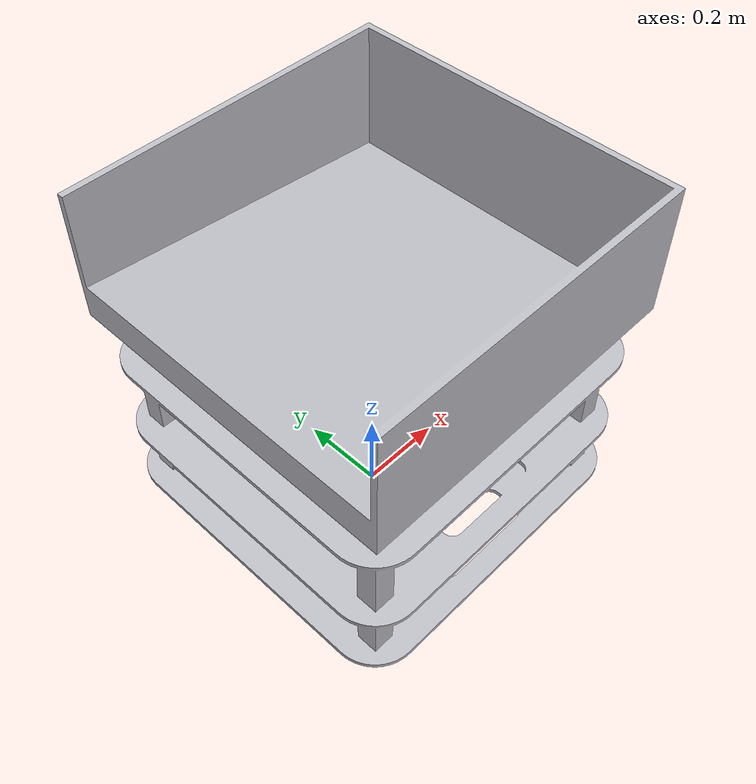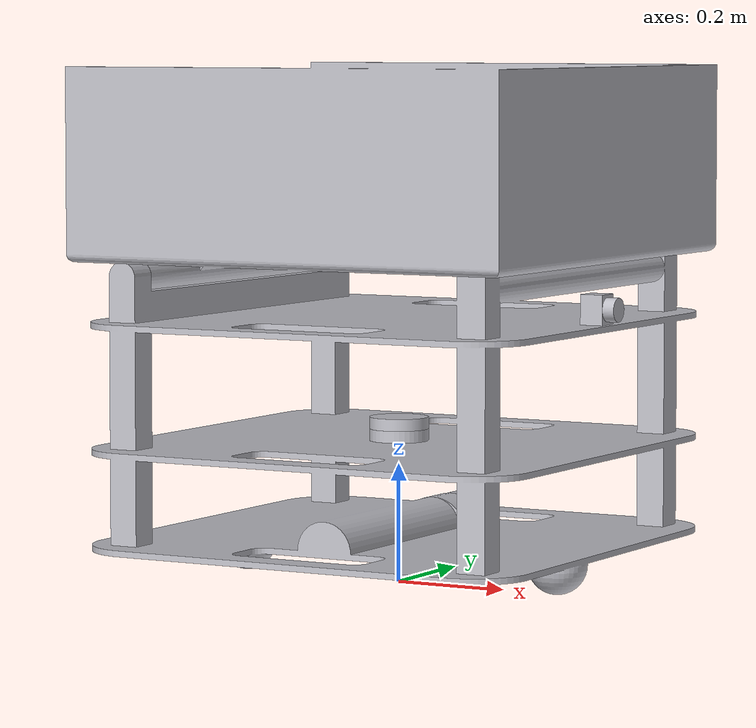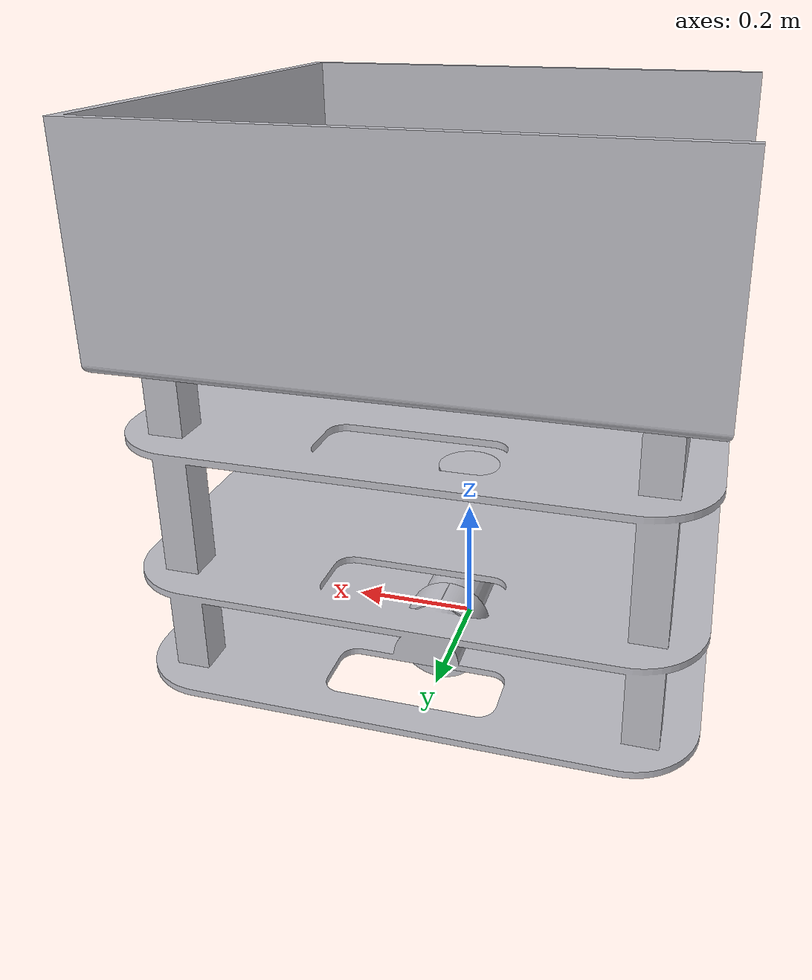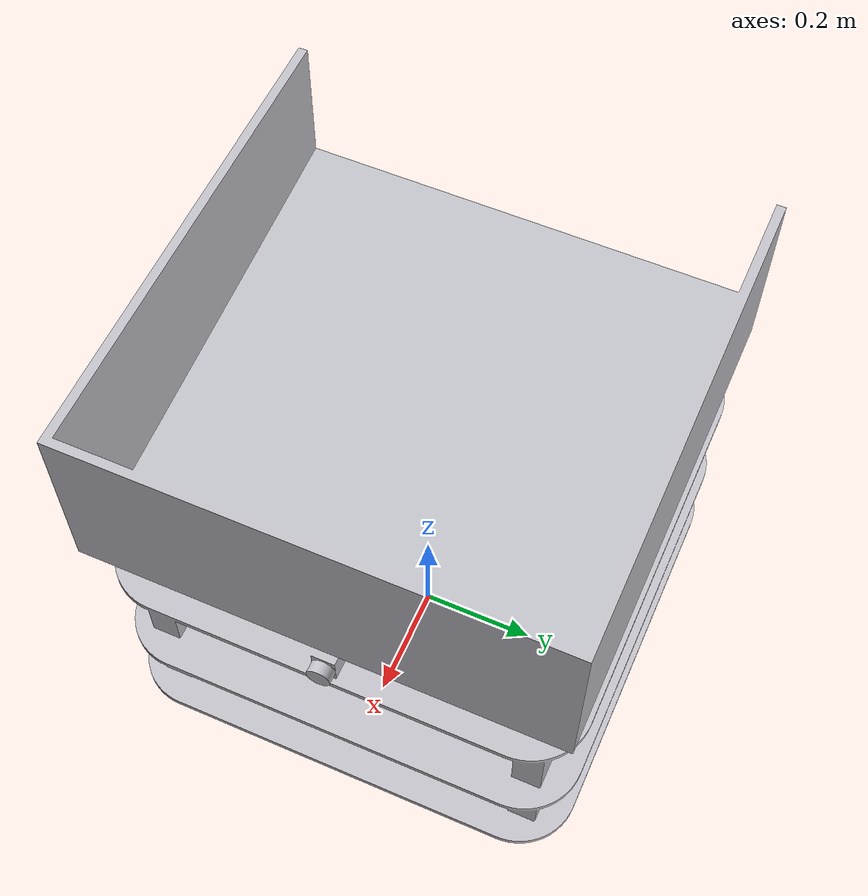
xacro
<?xml version="1.0" ?>
<robot name="factory_amr" xmlns:xacro="http://www.ros.org/wiki/xacro">

<xacro:include filename="$(find factory_amr_description)/urdf/materials.xacro" />
<xacro:include filename="$(find factory_amr_description)/urdf/factory_amr.trans" />
<xacro:include filename="$(find factory_amr_description)/urdf/factory_amr.gazebo" />
<link name="base_link">
  <inertial>
    <origin xyz="-0.002396599951463409 2.104073385822183e-15 0.2688636212913025" rpy="0 0 0"/>
    <mass value="29.324129559371645"/>
    <inertia ixx="2.322166" iyy="2.720165" izz="3.470128" ixy="0.0" iyz="0.0" ixz="-0.006447"/>
  </inertial>
  <visual>
    <origin xyz="0 0 0" rpy="0 0 0"/>
    <geometry>
      <mesh filename="file://$(find factory_amr_description)/meshes/base_link.stl" scale="0.001 0.001 0.001"/>
    </geometry>
    <material name="silver"/>
  </visual>
  <collision>
    <origin xyz="0 0 0" rpy="0 0 0"/>
    <geometry>
      <mesh filename="file://$(find factory_amr_description)/meshes/base_link.stl" scale="0.001 0.001 0.001"/>
    </geometry>
  </collision>
</link>

<link name="right_wheel_1">
  <inertial>
    <origin xyz="-1.5713222806367798e-17 -0.03750000000000003 0.0" rpy="0 0 0"/>
    <mass value="2.1531676424929196"/>
    <inertia ixx="0.006279" iyy="0.010596" izz="0.006279" ixy="0.0" iyz="-0.0" ixz="-0.0"/>
  </inertial>
  <visual>
    <origin xyz="-0.0 0.25 -0.1" rpy="0 0 0"/>
    <geometry>
      <mesh filename="file://$(find factory_amr_description)/meshes/right_wheel_1.stl" scale="0.001 0.001 0.001"/>
    </geometry>
    <material name="silver"/>
  </visual>
  <collision>
    <origin xyz="-0.0 0.25 -0.1" rpy="0 0 0"/>
    <geometry>
      <mesh filename="file://$(find factory_amr_description)/meshes/right_wheel_1.stl" scale="0.001 0.001 0.001"/>
    </geometry>
  </collision>
</link>

<link name="left_wheel_1">
  <inertial>
    <origin xyz="0.0 0.03749999999999998 1.3877787807814457e-17" rpy="0 0 0"/>
    <mass value="2.153167642492919"/>
    <inertia ixx="0.006279" iyy="0.010596" izz="0.006279" ixy="0.0" iyz="0.0" ixz="0.0"/>
  </inertial>
  <visual>
    <origin xyz="-0.0 -0.25 -0.1" rpy="0 0 0"/>
    <geometry>
      <mesh filename="file://$(find factory_amr_description)/meshes/left_wheel_1.stl" scale="0.001 0.001 0.001"/>
    </geometry>
    <material name="silver"/>
  </visual>
  <collision>
    <origin xyz="-0.0 -0.25 -0.1" rpy="0 0 0"/>
    <geometry>
      <mesh filename="file://$(find factory_amr_description)/meshes/left_wheel_1.stl" scale="0.001 0.001 0.001"/>
    </geometry>
  </collision>
</link>

<link name="revolute_1">
  <inertial>
    <origin xyz="0.2776968707983327 -0.2999999999999999 0.08670656285317513" rpy="0 0 0"/>
    <mass value="128.17276920688812"/>
    <inertia ixx="9.105387" iyy="8.394601" izz="16.079343" ixy="0.0" iyz="-0.0" ixz="-0.544919"/>
  </inertial>
  <visual>
    <origin xyz="0.325 -0.3 -0.525" rpy="0 0 0"/>
    <geometry>
      <mesh filename="file://$(find factory_amr_description)/meshes/revolute_1.stl" scale="0.001 0.001 0.001"/>
    </geometry>
    <material name="silver"/>
  </visual>
  <collision>
    <origin xyz="0.325 -0.3 -0.525" rpy="0 0 0"/>
    <geometry>
      <mesh filename="file://$(find factory_amr_description)/meshes/revolute_1.stl" scale="0.001 0.001 0.001"/>
    </geometry>
  </collision>
</link>

<link name="lidar_1">
  <inertial>
    <origin xyz="-7.237528875152536e-18 -1.447505775030507e-17 0.010000000000000009" rpy="0 0 0"/>
    <mass value="1.2330751165339937"/>
    <inertia ixx="0.000812" iyy="0.000812" izz="0.001541" ixy="-0.0" iyz="0.0" ixz="0.0"/>
  </inertial>
  <visual>
    <origin xyz="-0.0 -0.0 -0.26" rpy="0 0 0"/>
    <geometry>
      <mesh filename="file://$(find factory_amr_description)/meshes/lidar_1.stl" scale="0.001 0.001 0.001"/>
    </geometry>
    <material name="silver"/>
  </visual>
  <collision>
    <origin xyz="-0.0 -0.0 -0.26" rpy="0 0 0"/>
    <geometry>
      <mesh filename="file://$(find factory_amr_description)/meshes/lidar_1.stl" scale="0.001 0.001 0.001"/>
    </geometry>
  </collision>
</link>

<link name="imu_1">
  <inertial>
    <origin xyz="0.0 0.0 -0.0050000000000000044" rpy="0 0 0"/>
    <mass value="0.1256"/>
    <inertia ixx="1.8e-05" iyy="1.8e-05" izz="3.3e-05" ixy="0.0" iyz="0.0" ixz="0.0"/>
  </inertial>
  <visual>
    <origin xyz="-0.0 -0.0 -0.23" rpy="0 0 0"/>
    <geometry>
      <mesh filename="file://$(find factory_amr_description)/meshes/imu_1.stl" scale="0.001 0.001 0.001"/>
    </geometry>
    <material name="silver"/>
  </visual>
  <collision>
    <origin xyz="-0.0 -0.0 -0.23" rpy="0 0 0"/>
    <geometry>
      <mesh filename="file://$(find factory_amr_description)/meshes/imu_1.stl" scale="0.001 0.001 0.001"/>
    </geometry>
  </collision>
</link>

<link name="camera_1">
  <inertial>
    <origin xyz="0.010000000000000064 0.0 0.0" rpy="0 0 0"/>
    <mass value="0.19729201864543888"/>
    <inertia ixx="3.9e-05" iyy="2.6e-05" izz="2.6e-05" ixy="0.0" iyz="-0.0" ixz="0.0"/>
  </inertial>
  <visual>
    <origin xyz="-0.39 -0.0 -0.475" rpy="0 0 0"/>
    <geometry>
      <mesh filename="file://$(find factory_amr_description)/meshes/camera_1.stl" scale="0.001 0.001 0.001"/>
    </geometry>
    <material name="silver"/>
  </visual>
  <collision>
    <origin xyz="-0.39 -0.0 -0.475" rpy="0 0 0"/>
    <geometry>
      <mesh filename="file://$(find factory_amr_description)/meshes/camera_1.stl" scale="0.001 0.001 0.001"/>
    </geometry>
  </collision>
</link>

<joint name="Revolute 7" type="continuous">
  <origin xyz="0.0 -0.25 0.1" rpy="0 0 0"/>
  <parent link="base_link"/>
  <child link="right_wheel_1"/>
  <axis xyz="0.0 -1.0 0.0"/>
</joint>

<joint name="Revolute 8" type="continuous">
  <origin xyz="0.0 0.25 0.1" rpy="0 0 0"/>
  <parent link="base_link"/>
  <child link="left_wheel_1"/>
  <axis xyz="0.0 1.0 0.0"/>
</joint>

<joint name="Revolute 9" type="revolute">
  <origin xyz="-0.325 0.3 0.525" rpy="0 0 0"/>
  <parent link="base_link"/>
  <child link="revolute_1"/>
  <axis xyz="0.0 -1.0 0.0"/>
  <limit upper="0.785398" lower="0.0" effort="100" velocity="100"/>
</joint>

<joint name="Rigid 10" type="fixed">
  <origin xyz="0.0 0.0 0.26" rpy="0 0 0"/>
  <parent link="base_link"/>
  <child link="lidar_1"/>
</joint>

<joint name="Rigid 11" type="fixed">
  <origin xyz="0.0 0.0 0.23" rpy="0 0 0"/>
  <parent link="base_link"/>
  <child link="imu_1"/>
</joint>

<joint name="Rigid 12" type="fixed">
  <origin xyz="0.39 0.0 0.475" rpy="0 0 0"/>
  <parent link="base_link"/>
  <child link="camera_1"/>
</joint>

</robot>
